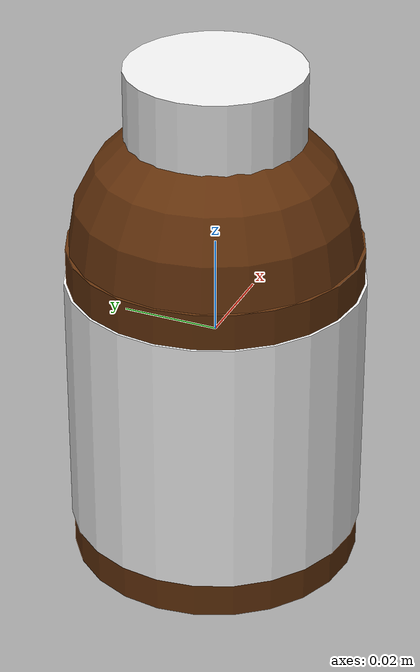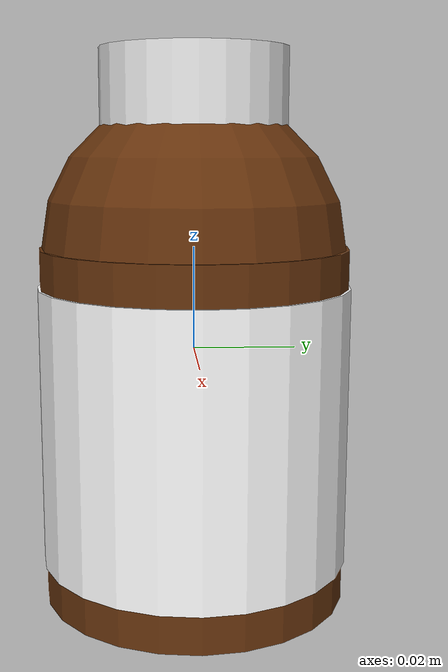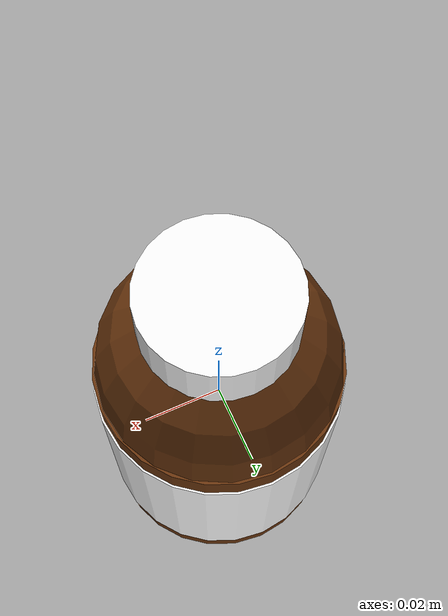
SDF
<?xml version="1.0" ?>
<sdf version="1.9">
  <model name="medicine_bottle">
    <static>false</static>
    <link name="link">
      <inertial>
        <mass>0.1</mass>
        <inertia>
          <ixx>0.0001</ixx> <ixy>0</ixy> <ixz>0</ixz>
          <iyy>0.0001</iyy> <iyz>0</iyz>
          <izz>0.0001</izz>
        </inertia>
      </inertial>

      <collision name="collision">
        <geometry>
          <cylinder>
            <radius>0.03</radius>
            <length>0.1</length>
          </cylinder>
        </geometry>
        <surface>
          <friction>
            <ode>
              <mu>0.8</mu>
              <mu2>0.8</mu2>
            </ode>
          </friction>
        </surface>
      </collision>

      <!-- 1. Main Bottle Body (Brown Glass) -->
      <visual name="body_visual">
        <pose>0 0 -0.015 0 0 0</pose> <!-- Shifted down to make room for neck -->
        <geometry>
          <cylinder>
            <radius>0.03</radius>
            <length>0.07</length>
          </cylinder>
        </geometry>
        <material>
          <ambient>0.4 0.2 0.05 1</ambient>
          <diffuse>0.4 0.2 0.05 1</diffuse>
          <specular>0.8 0.8 0.8 1</specular>
          <pbr>
            <metal>
              <roughness>0.1</roughness>
              <metalness>0.1</metalness>
            </metal>
          </pbr>
        </material>
      </visual>

      <!-- 2. Bottle Shoulder (Sphere/Cylinder transition) -->
      <visual name="shoulder_visual">
        <pose>0 0 0.02 0 0 0</pose>
        <geometry>
            <sphere>
                <radius>0.0295</radius>
            </sphere>
        </geometry>
        <material>
          <ambient>0.4 0.2 0.05 1</ambient>
          <diffuse>0.4 0.2 0.05 1</diffuse>
          <specular>0.8 0.8 0.8 1</specular>
          <pbr>
            <metal>
              <roughness>0.1</roughness>
              <metalness>0.1</metalness>
            </metal>
          </pbr>
        </material>
      </visual>

      <!-- 3. Needle/Neck -->
      <visual name="neck_visual">
        <pose>0 0 0.035 0 0 0</pose>
        <geometry>
          <cylinder>
            <radius>0.015</radius>
            <length>0.03</length>
          </cylinder>
        </geometry>
        <material>
          <ambient>0.4 0.2 0.05 1</ambient>
          <diffuse>0.4 0.2 0.05 1</diffuse>
           <specular>0.8 0.8 0.8 1</specular>
           <pbr>
            <metal>
              <roughness>0.1</roughness>
              <metalness>0.1</metalness>
            </metal>
          </pbr>
        </material>
      </visual>

      <!-- 4. Label (High Res Texture) -->
      <visual name="label_visual">
        <pose>0 0 -0.015 0 0 0</pose>
        <geometry>
          <cylinder>
            <radius>0.0305</radius>
            <length>0.055</length>
          </cylinder>
        </geometry>
        <material>
          <ambient>1 1 1 1</ambient>
          <diffuse>1 1 1 1</diffuse>
          <specular>0.1 0.1 0.1 1</specular>
          <pbr>
            <metal>
              <albedo_map>model://medicine_bottle/materials/textures/label_variant_1.png</albedo_map>
              <roughness>0.7</roughness>
              <metalness>0.0</metalness>
            </metal>
          </pbr>
        </material>
      </visual>

      <!-- 5. Cap (White ribbed plastic) -->
      <visual name="cap_visual">
        <pose>0 0 0.05 0 0 0</pose>
        <geometry>
          <cylinder>
            <radius>0.018</radius>
            <length>0.015</length>
          </cylinder>
        </geometry>
        <material>
          <ambient>0.95 0.95 0.95 1</ambient>
          <diffuse>0.95 0.95 0.95 1</diffuse>
          <specular>0.2 0.2 0.2 1</specular>
          <pbr>
            <metal>
              <roughness>0.5</roughness>
              <metalness>0.0</metalness>
            </metal>
          </pbr>
        </material>
      </visual>

    </link>
  </model>
</sdf>
